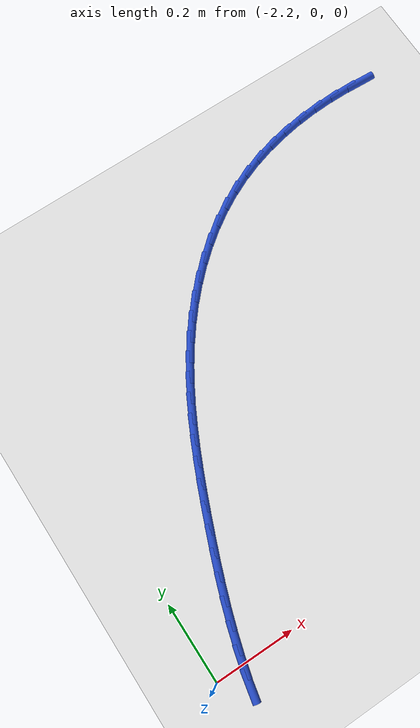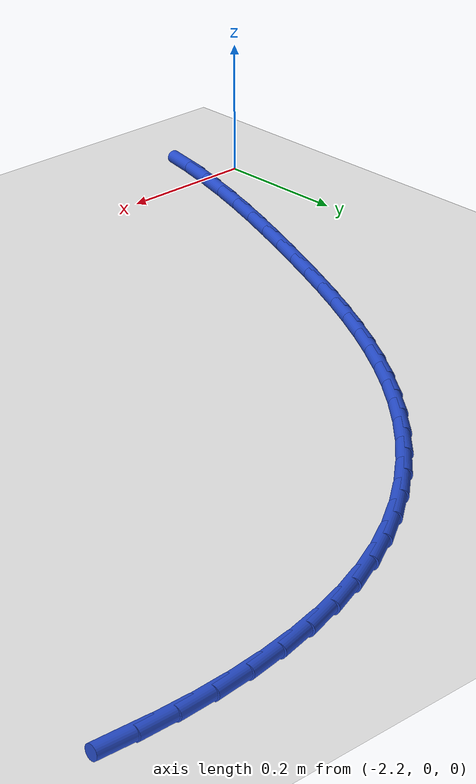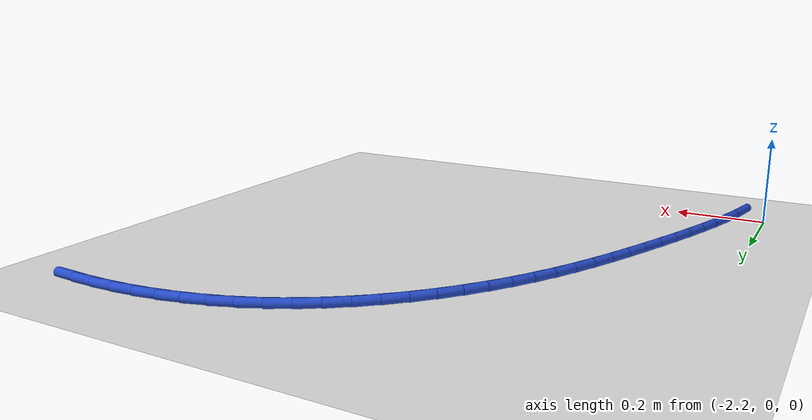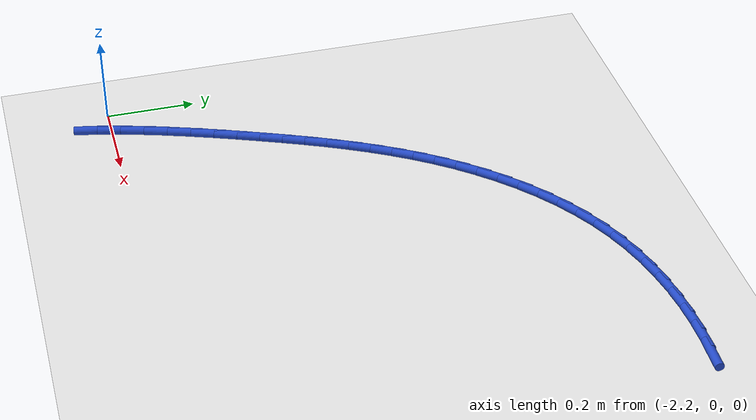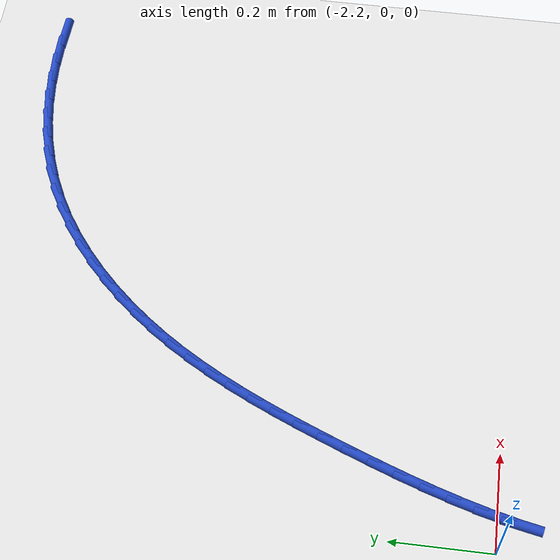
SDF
<sdf version="1.6">
 <world name="default">
  <model name="ground_plane">
   <static>1</static>
   <link name="link">
    <collision name="collision">
     <geometry><plane><normal>0 0 1</normal><size>100 100</size></plane></geometry>
     <surface><friction><ode><mu>100</mu><mu2>50</mu2></ode></friction></surface>
    </collision>
    <visual name="visual">
     <cast_shadows>0</cast_shadows>
     <geometry><plane><normal>0 0 1</normal><size>100 100</size></plane></geometry>
     <material>
      <script><uri>file://media/materials/scripts/gazebo.material</uri><name>Gazebo/WhiteGlow</name></script>
     </material>
    </visual>
   </link>
  </model>
  <model name="line">
   <link name="link_32">
    <pose>-1.0863211531665564 1.031289866690707 0.01 0 1.57 -0.04961896822445525</pose>
    <collision name="collision">
     <geometry><cylinder><radius>0.01</radius><length>0.08</length></cylinder></geometry>
    </collision>
    <visual name="visual">
     <material>
      <script><name>Gazebo/Blue</name><uri>file://media/materials/scripts/gazebo.material</uri></script>
     </material>
     <geometry><cylinder><radius>0.01</radius><length>0.08</length></cylinder></geometry>
    </visual>
   </link>
   <link name="link_33">
    <pose>-1.1386545356509312 1.0338887283189353 0.01 0 1.57 0.002261888534587303</pose>
    <collision name="collision">
     <geometry><cylinder><radius>0.01</radius><length>0.08</length></cylinder></geometry>
    </collision>
    <visual name="visual">
     <material>
      <script><name>Gazebo/Blue</name><uri>file://media/materials/scripts/gazebo.material</uri></script>
     </material>
     <geometry><cylinder><radius>0.01</radius><length>0.08</length></cylinder></geometry>
    </visual>
   </link>
   <link name="link_34">
    <pose>-1.1909929820268113 1.03377034438527 0.01 0 1.57 0.056432547996098995</pose>
    <collision name="collision">
     <geometry><cylinder><radius>0.01</radius><length>0.08</length></cylinder></geometry>
    </collision>
    <visual name="visual">
     <material>
      <script><name>Gazebo/Blue</name><uri>file://media/materials/scripts/gazebo.material</uri></script>
     </material>
     <geometry><cylinder><radius>0.01</radius><length>0.08</length></cylinder></geometry>
    </visual>
   </link>
   <link name="link_35">
    <pose>-1.2431113334224366 1.0308260468530417 0.01 0 1.57 0.11328350188227881</pose>
    <collision name="collision">
     <geometry><cylinder><radius>0.01</radius><length>0.08</length></cylinder></geometry>
    </collision>
    <visual name="visual">
     <material>
      <script><name>Gazebo/Blue</name><uri>file://media/materials/scripts/gazebo.material</uri></script>
     </material>
     <geometry><cylinder><radius>0.01</radius><length>0.08</length></cylinder></geometry>
    </visual>
   </link>
   <link name="link_36">
    <pose>-1.2947844309660481 1.0249471676855828 0.01 0 1.57 0.17318210583175278</pose>
    <collision name="collision">
     <geometry><cylinder><radius>0.01</radius><length>0.08</length></cylinder></geometry>
    </collision>
    <visual name="visual">
     <material>
      <script><name>Gazebo/Blue</name><uri>file://media/materials/scripts/gazebo.material</uri></script>
     </material>
     <geometry><cylinder><radius>0.01</radius><length>0.08</length></cylinder></geometry>
    </visual>
   </link>
   <link name="link_37">
    <pose>-1.3457871157858863 1.0160250388462237 0.01 0 1.57 0.2364569600835933</pose>
    <collision name="collision">
     <geometry><cylinder><radius>0.01</radius><length>0.08</length></cylinder></geometry>
    </collision>
    <visual name="visual">
     <material>
      <script><name>Gazebo/Blue</name><uri>file://media/materials/scripts/gazebo.material</uri></script>
     </material>
     <geometry><cylinder><radius>0.01</radius><length>0.08</length></cylinder></geometry>
    </visual>
   </link>
   <link name="link_38">
    <pose>-1.3958942290101921 1.003950992298296 0.01 0 1.57 0.3033755421830995</pose>
    <collision name="collision">
     <geometry><cylinder><radius>0.01</radius><length>0.08</length></cylinder></geometry>
    </collision>
    <visual name="visual">
     <material>
      <script><name>Gazebo/Blue</name><uri>file://media/materials/scripts/gazebo.material</uri></script>
     </material>
     <geometry><cylinder><radius>0.01</radius><length>0.08</length></cylinder></geometry>
    </visual>
   </link>
   <link name="link_39">
    <pose>-1.4448806117672048 0.9886163600051308 0.01 0 1.57 0.3741149873043849</pose>
    <collision name="collision">
     <geometry><cylinder><radius>0.01</radius><length>0.08</length></cylinder></geometry>
    </collision>
    <visual name="visual">
     <material>
      <script><name>Gazebo/Blue</name><uri>file://media/materials/scripts/gazebo.material</uri></script>
     </material>
     <geometry><cylinder><radius>0.01</radius><length>0.08</length></cylinder></geometry>
    </visual>
   </link>
   <link name="link_40">
    <pose>-1.4925211051851657 0.9699124739300595 0.01 0 1.57 0.448670879619938</pose>
    <collision name="collision">
     <geometry><cylinder><radius>0.01</radius><length>0.08</length></cylinder></geometry>
    </collision>
    <visual name="visual">
     <material>
      <script><name>Gazebo/Blue</name><uri>file://media/materials/scripts/gazebo.material</uri></script>
     </material>
     <geometry><cylinder><radius>0.01</radius><length>0.08</length></cylinder></geometry>
    </visual>
   </link>
   <link name="link_41">
    <pose>-1.5385914546605532 0.9477334311217532 0.01 0 1.57 0.5236729809707132</pose>
    <collision name="collision">
     <geometry><cylinder><radius>0.01</radius><length>0.08</length></cylinder></geometry>
    </collision>
    <visual name="visual">
     <material>
      <script><name>Gazebo/Blue</name><uri>file://media/materials/scripts/gazebo.material</uri></script>
     </material>
     <geometry><cylinder><radius>0.01</radius><length>0.08</length></cylinder></geometry>
    </visual>
   </link>
   <link name="link_42">
    <pose>-1.5829204937288552 0.922135662357694 0.01 0 1.57 0.5941408361709092</pose>
    <collision name="collision">
     <geometry><cylinder><radius>0.01</radius><length>0.08</length></cylinder></geometry>
    </collision>
    <visual name="visual">
     <material>
      <script><name>Gazebo/Blue</name><uri>file://media/materials/scripts/gazebo.material</uri></script>
     </material>
     <geometry><cylinder><radius>0.01</radius><length>0.08</length></cylinder></geometry>
    </visual>
   </link>
   <link name="link_43">
    <pose>-1.6254186779017346 0.893425183350769 0.01 0 1.57 0.6599682010660148</pose>
    <collision name="collision">
     <geometry><cylinder><radius>0.01</radius><length>0.08</length></cylinder></geometry>
    </collision>
    <visual name="visual">
     <material>
      <script><name>Gazebo/Blue</name><uri>file://media/materials/scripts/gazebo.material</uri></script>
     </material>
     <geometry><cylinder><radius>0.01</radius><length>0.08</length></cylinder></geometry>
    </visual>
   </link>
   <link name="link_44">
    <pose>-1.6660034068255118 0.8619292436957372 0.01 0 1.57 0.7215981558303829</pose>
    <collision name="collision">
     <geometry><cylinder><radius>0.01</radius><length>0.08</length></cylinder></geometry>
    </collision>
    <visual name="visual">
     <material>
      <script><name>Gazebo/Blue</name><uri>file://media/materials/scripts/gazebo.material</uri></script>
     </material>
     <geometry><cylinder><radius>0.01</radius><length>0.08</length></cylinder></geometry>
    </visual>
   </link>
   <link name="link_45">
    <pose>-1.7045920801465093 0.8279750929873568 0.01 0 1.57 0.7795451489018949</pose>
    <collision name="collision">
     <geometry><cylinder><radius>0.01</radius><length>0.08</length></cylinder></geometry>
    </collision>
    <visual name="visual">
     <material>
      <script><name>Gazebo/Blue</name><uri>file://media/materials/scripts/gazebo.material</uri></script>
     </material>
     <geometry><cylinder><radius>0.01</radius><length>0.08</length></cylinder></geometry>
    </visual>
   </link>
   <link name="link_46">
    <pose>-1.7411020975110483 0.7918899808203862 0.01 0 1.57 0.8343648217351436</pose>
    <collision name="collision">
     <geometry><cylinder><radius>0.01</radius><length>0.08</length></cylinder></geometry>
    </collision>
    <visual name="visual">
     <material>
      <script><name>Gazebo/Blue</name><uri>file://media/materials/scripts/gazebo.material</uri></script>
     </material>
     <geometry><cylinder><radius>0.01</radius><length>0.08</length></cylinder></geometry>
    </visual>
   </link>
   <link name="link_47">
    <pose>-1.7754508585654512 0.7540011567895845 0.01 0 1.57 0.886632646554242</pose>
    <collision name="collision">
     <geometry><cylinder><radius>0.01</radius><length>0.08</length></cylinder></geometry>
    </collision>
    <visual name="visual">
     <material>
      <script><name>Gazebo/Blue</name><uri>file://media/materials/scripts/gazebo.material</uri></script>
     </material>
     <geometry><cylinder><radius>0.01</radius><length>0.08</length></cylinder></geometry>
    </visual>
   </link>
   <link name="link_48">
    <pose>-1.807556883253785 0.7146348482805511 0.01 0 1.57 0.9364034483091279</pose>
    <collision name="collision">
     <geometry><cylinder><radius>0.01</radius><length>0.08</length></cylinder></geometry>
    </collision>
    <visual name="visual">
     <material>
      <script><name>Gazebo/Blue</name><uri>file://media/materials/scripts/gazebo.material</uri></script>
     </material>
     <geometry><cylinder><radius>0.01</radius><length>0.08</length></cylinder></geometry>
    </visual>
   </link>
   <link name="link_49">
    <pose>-1.837441052962501 0.6740238835765446 0.01 0 1.57 0.982688150226702</pose>
    <collision name="collision">
     <geometry><cylinder><radius>0.01</radius><length>0.08</length></cylinder></geometry>
    </collision>
    <visual name="visual">
     <material>
      <script><name>Gazebo/Blue</name><uri>file://media/materials/scripts/gazebo.material</uri></script>
     </material>
     <geometry><cylinder><radius>0.01</radius><length>0.08</length></cylinder></geometry>
    </visual>
   </link>
   <link name="link_50">
    <pose>-1.8653073094455856 0.6322340585939059 0.01 0 1.57 1.0249272746626186</pose>
    <collision name="collision">
     <geometry><cylinder><radius>0.01</radius><length>0.08</length></cylinder></geometry>
    </collision>
    <visual name="visual">
     <material>
      <script><name>Gazebo/Blue</name><uri>file://media/materials/scripts/gazebo.material</uri></script>
     </material>
     <geometry><cylinder><radius>0.01</radius><length>0.08</length></cylinder></geometry>
    </visual>
   </link>
   <link name="link_51">
    <pose>-1.8913785847936528 0.5893138416268485 0.01 0 1.57 1.0627676025673864</pose>
    <collision name="collision">
     <geometry><cylinder><radius>0.01</radius><length>0.08</length></cylinder></geometry>
    </collision>
    <visual name="visual">
     <material>
      <script><name>Gazebo/Blue</name><uri>file://media/materials/scripts/gazebo.material</uri></script>
     </material>
     <geometry><cylinder><radius>0.01</radius><length>0.08</length></cylinder></geometry>
    </visual>
   </link>
   <link name="link_52">
    <pose>-1.9158778110973165 0.5453117009695856 0.01 0 1.57 1.0959797059217673</pose>
    <collision name="collision">
     <geometry><cylinder><radius>0.01</radius><length>0.08</length></cylinder></geometry>
    </collision>
    <visual name="visual">
     <material>
      <script><name>Gazebo/Blue</name><uri>file://media/materials/scripts/gazebo.material</uri></script>
     </material>
     <geometry><cylinder><radius>0.01</radius><length>0.08</length></cylinder></geometry>
    </visual>
   </link>
   <link name="link_53">
    <pose>-1.9390279204471899 0.5002761049163296 0.01 0 1.57 1.1244418047031486</pose>
    <collision name="collision">
     <geometry><cylinder><radius>0.01</radius><length>0.08</length></cylinder></geometry>
    </collision>
    <visual name="visual">
     <material>
      <script><name>Gazebo/Blue</name><uri>file://media/materials/scripts/gazebo.material</uri></script>
     </material>
     <geometry><cylinder><radius>0.01</radius><length>0.08</length></cylinder></geometry>
    </visual>
   </link>
   <link name="link_54">
    <pose>-1.961051844933888 0.4542555217612932 0.01 0 1.57 1.1481199408607314</pose>
    <collision name="collision">
     <geometry><cylinder><radius>0.01</radius><length>0.08</length></cylinder></geometry>
    </collision>
    <visual name="visual">
     <material>
      <script><name>Gazebo/Blue</name><uri>file://media/materials/scripts/gazebo.material</uri></script>
     </material>
     <geometry><cylinder><radius>0.01</radius><length>0.08</length></cylinder></geometry>
    </visual>
   </link>
   <link name="link_55">
    <pose>-1.9821725166480235 0.4072984197986896 0.01 0 1.57 1.167047795348514</pose>
    <collision name="collision">
     <geometry><cylinder><radius>0.01</radius><length>0.08</length></cylinder></geometry>
    </collision>
    <visual name="visual">
     <material>
      <script><name>Gazebo/Blue</name><uri>file://media/materials/scripts/gazebo.material</uri></script>
     </material>
     <geometry><cylinder><radius>0.01</radius><length>0.08</length></cylinder></geometry>
    </visual>
   </link>
   <link name="link_56">
    <pose>-2.0026128676802104 0.35945326732273203 0.01 0 1.57 1.18130841194839</pose>
    <collision name="collision">
     <geometry><cylinder><radius>0.01</radius><length>0.08</length></cylinder></geometry>
    </collision>
    <visual name="visual">
     <material>
      <script><name>Gazebo/Blue</name><uri>file://media/materials/scripts/gazebo.material</uri></script>
     </material>
     <geometry><cylinder><radius>0.01</radius><length>0.08</length></cylinder></geometry>
    </visual>
   </link>
   <link name="link_57">
    <pose>-2.022595830121063 0.3107685326276332 0.01 0 1.57 1.1918209309768064</pose>
    <collision name="collision">
     <geometry><cylinder><radius>0.01</radius><length>0.08</length></cylinder></geometry>
    </collision>
    <visual name="visual">
     <material>
      <script><name>Gazebo/Blue</name><uri>file://media/materials/scripts/gazebo.material</uri></script>
     </material>
     <geometry><cylinder><radius>0.01</radius><length>0.08</length></cylinder></geometry>
    </visual>
   </link>
   <link name="link_58">
    <pose>-2.042295235355919 0.2613005234563119 0.01 0 1.57 1.2040657034810114</pose>
    <collision name="collision">
     <geometry><cylinder><radius>0.01</radius><length>0.08</length></cylinder></geometry>
    </collision>
    <visual name="visual">
     <material>
      <script><name>Gazebo/Blue</name><uri>file://media/materials/scripts/gazebo.material</uri></script>
     </material>
     <geometry><cylinder><radius>0.01</radius><length>0.08</length></cylinder></geometry>
    </visual>
   </link>
   <link name="link_59">
    <pose>-2.0615552441470886 0.21115818296547334 0.01 0 1.57 1.220322504490221</pose>
    <collision name="collision">
     <geometry><cylinder><radius>0.01</radius><length>0.08</length></cylinder></geometry>
    </collision>
    <visual name="visual">
     <material>
      <script><name>Gazebo/Blue</name><uri>file://media/materials/scripts/gazebo.material</uri></script>
     </material>
     <geometry><cylinder><radius>0.01</radius><length>0.08</length></cylinder></geometry>
    </visual>
   </link>
   <link name="link_60">
    <pose>-2.080084322591063 0.16047211940535744 0.01 0 1.57 1.2407354173151401</pose>
    <collision name="collision">
     <geometry><cylinder><radius>0.01</radius><length>0.08</length></cylinder></geometry>
    </collision>
    <visual name="visual">
     <material>
      <script><name>Gazebo/Blue</name><uri>file://media/materials/scripts/gazebo.material</uri></script>
     </material>
     <geometry><cylinder><radius>0.01</radius><length>0.08</length></cylinder></geometry>
    </visual>
   </link>
   <link name="link_61">
    <pose>-2.097590516567803 0.1093730081182324 0.01 0 1.57 1.265525944106924</pose>
    <collision name="collision">
     <geometry><cylinder><radius>0.01</radius><length>0.08</length></cylinder></geometry>
    </collision>
    <visual name="visual">
     <material>
      <script><name>Gazebo/Blue</name><uri>file://media/materials/scripts/gazebo.material</uri></script>
     </material>
     <geometry><cylinder><radius>0.01</radius><length>0.08</length></cylinder></geometry>
    </visual>
   </link>
   <link name="link_62">
    <pose>-2.1137818719572685 0.05799152444636664 0.01 0 1.57 1.2949958141099351</pose>
    <collision name="collision">
     <geometry><cylinder><radius>0.01</radius><length>0.08</length></cylinder></geometry>
    </collision>
    <visual name="visual">
     <material>
      <script><name>Gazebo/Blue</name><uri>file://media/materials/scripts/gazebo.material</uri></script>
     </material>
     <geometry><cylinder><radius>0.01</radius><length>0.08</length></cylinder></geometry>
    </visual>
   </link>
   <link name="link_63">
    <pose>-2.12836643463942 0.006458343732029196 0.01 0 1.57 1.329522211677719</pose>
    <collision name="collision">
     <geometry><cylinder><radius>0.01</radius><length>0.08</length></cylinder></geometry>
    </collision>
    <visual name="visual">
     <material>
      <script><name>Gazebo/Blue</name><uri>file://media/materials/scripts/gazebo.material</uri></script>
     </material>
     <geometry><cylinder><radius>0.01</radius><length>0.08</length></cylinder></geometry>
    </visual>
   </link>
   <link name="link_64">
    <pose>-2.1410522504942175 -0.045095858682510724 0.01 0 1.57 1.369549620547383</pose>
    <collision name="collision">
     <geometry><cylinder><radius>0.01</radius><length>0.08</length></cylinder></geometry>
    </collision>
    <visual name="visual">
     <material>
      <script><name>Gazebo/Blue</name><uri>file://media/materials/scripts/gazebo.material</uri></script>
     </material>
     <geometry><cylinder><radius>0.01</radius><length>0.08</length></cylinder></geometry>
    </visual>
   </link>
  </model>
 </world>
</sdf>
